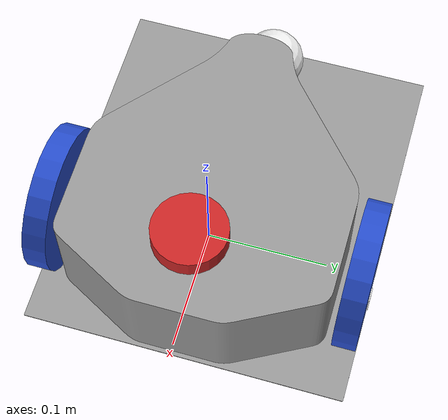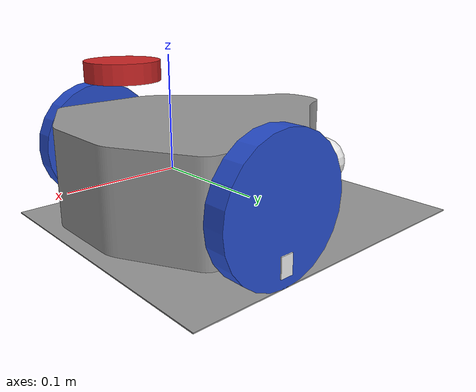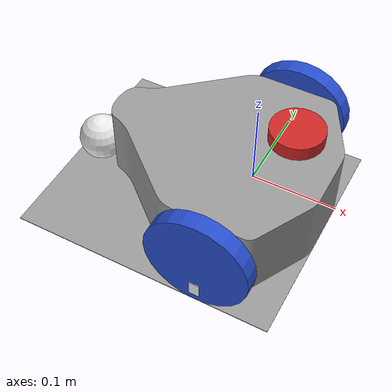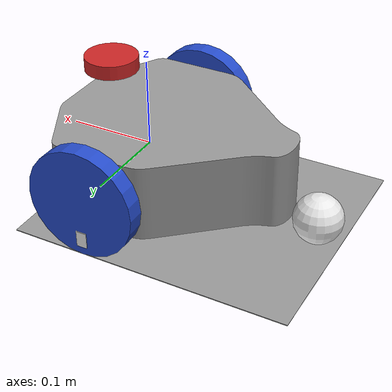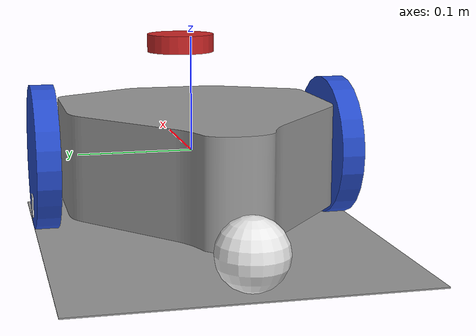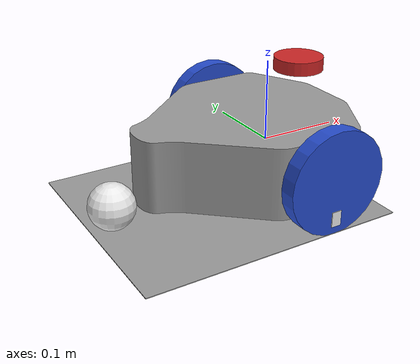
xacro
<?xml version="1.0" ?>
<robot name="stingray" xmlns:xacro="http://ros.org/wiki/xacro">

  <xacro:include filename="stingray_properties.xacro" />
  <xacro:include filename="stingray_base.urdf.xacro" />

  <xacro:property name="imu_offset_x" value="-0.04"/>
  <xacro:property name="imu_offset_z" value="0"/>
  <xacro:property name="imu_visual_size" value="0.01"/>
  <xacro:include filename="../../../description/imu.xacro" />

  <xacro:property name="laser_offset_x" value="0.085"/>
  <xacro:property name="laser_offset_z" value="0.033"/>

  <xacro:include filename="stingray_sensors.urdf.xacro" />

</robot>

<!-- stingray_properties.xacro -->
<robot xmlns:xacro="http://www.ros.org/wiki/xacro">

    <xacro:property name="chassis_length" value="0.266"/>
    <xacro:property name="chassis_width" value="0.228"/>
    <xacro:property name="chassis_height" value="0.081"/>
    <!--chassis_offset is distance from center of chassis
    to chassis origin between the wheels at base_link -->
    <xacro:property name="chassis_offset" value="0.0455"/>
    <!-- front_panel_offset is distance from chassis origin
    at base_link to the front of the chassis -->
    <xacro:property name="front_panel_offset" value="0.090"/>
    <xacro:property name="wheel_radius" value="0.0615"/>
    <xacro:property name="wheel_thickness" value="0.02"/>
    <xacro:property name="wheel_offset" value="0.13"/>
    <xacro:property name="wheel_separation" value="0.26"/>
    <xacro:property name="caster_radius" value="0.028"/>
    <xacro:property name="caster_x_offset" value="-0.207"/>
    <xacro:property name="caster_z_offset" value="-0.035"/>
    <xacro:property name="chassis_mass" value="0.98"/>
    <xacro:property name="wheel_mass" value="0.058"/>
    <xacro:property name="caster_mass" value="0.022"/>
    <xacro:property name="lidar_mass" value="0.207"/>
    <xacro:property name="lidar_radius" value="0.03025"/>
    <xacro:property name="lidar_height" value="0.016"/>
    <xacro:property name="lidar_stand_height" value="0.0424"/>
    <xacro:property name="lidar_offset_X" value="0.045"/>
    <xacro:property name="camera_height" value="0.040"/>
    <xacro:property name="camera_width" value="0.040"/>
    <xacro:property name="camera_depth" value="0.0016"/>
    <xacro:property name="camera_lens_radius" value="0.009"/>
    <xacro:property name="camera_offset_Z" value="0.016"/>
    <xacro:property name="camera_lens_length" value="0.0256"/>
    <xacro:property name="BLANK" value="0.0"/>

</robot>

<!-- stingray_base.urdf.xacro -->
<robot xmlns:xacro="http://ros.org/wiki/xacro">

    <!-- BASE LINK -->
    <link name="base_link">
    <!-- Is located center wheel axles  in mid Y and Z axes of the chassis -->
    <!-- It needs to sit above the world origin by the wheel radius -->
        <origin xyz="0.0 0.0 ${wheel_radius}"/>
    </link>

    <!-- BASE JOINT -->
    <joint name="base_joint" type="fixed">
        <parent link="base_link"/>
        <child link="base_footprint"/>
        <origin xyz="0.0 0.0 -${wheel_radius}" rpy="0.0 0.0 0.0"/>
    </joint>

    <!-- BASE FOOTPRINT -->
    <!-- Represents the 'shadow'of the robot on the floor/ground -->
    <!-- It is the 2d outside dimension of the robot and minimal thickness -->
    <link name="base_footprint">
        <visual name="footprint_visual">
            <origin xyz="-${chassis_offset + caster_radius} 0.0 0.0"/>
            <geometry>
                <box size="${chassis_length + (caster_radius * 2)} ${wheel_separation + wheel_thickness} 0.001"/>
            </geometry>
            <material name="gray"/>
        </visual>
    </link>

    <!-- CHASSIS LINK -->
    <joint name="chassis_joint" type="fixed">
        <origin xyz="0.0 0.0 0.0" rpy="0.0 0.0 0.0"/>
        <parent link="base_link"/>
        <child link="chassis_link"/>
    </joint>
    <link name="chassis_link">
        <visual name="chassis_gz_visual">
            <origin xyz="0.0 0.0 0.0" rpy="0.0 0.0 0.0"/>
            <geometry>
                <!-- box size="${chassis_length} ${chassis_width} ${chassis_height}"/ -->
                <!-- mesh filename="package://stingray/assets/meshes/Stingray.stl" scale="0.001 0.001 0.001"/-->
                <!-- mesh filename="/home/ubuntu/stingray_ws/src/stingray/assets/meshes/Stingray.stl" scale="0.001 0.001 0.001"/-->
                <mesh filename="file://$(find articubot_one)/assets/meshes/Stingray.stl" scale="0.001 0.001 0.001"/>
            </geometry>
            <material name="gray"/>
        </visual>
        <visual name="chassis_rviz_visual">
             <origin xyz="0.0 0.0 0.0" rpy="0.0 0.0 0.0"/>
            <geometry>
                <!-- box size="${chassis_length} ${chassis_width} ${chassis_height}"/ -->
                <mesh filename="file://$(find articubot_one)/assets/meshes/Stingray.stl" scale="0.001 0.001 0.001"/>
                <!-- mesh filename="/home/ubuntu/stingray_ws/src/stingray/assets/meshes/Stingray.stl" scale="0.001 0.001 0.001"/-->
                <!-- mesh filename="file://home/ubuntu/stingray_ws/src/stingray/assets/meshes/Stingray.stl" scale="0.001 0.001 0.001"/-->
            </geometry>
            <material name="gray"/>
        </visual>

        <collision>
            <origin xyz="0.0 0.0 0.0" rpy="0.0 0.0 0.0"/>
            <geometry>
                <!-- mesh filename="package://articubot_one/assets/meshes/Stingray.stl" scale="0.001 0.001 0.001"/ -->
		            <!-- collision doesn't need to be a mesh, a box is sufficient -->
                <box size="${chassis_length} ${chassis_width} ${chassis_height}"/>
            </geometry>
        </collision>
        <xacro:inertial_box mass="${chassis_mass}" x="${chassis_length}" y="${chassis_width}" z="${chassis_height}">
            <origin xyz="0.0 0.0 0.0" rpy="0.0 0.0 0.0"/>
        </xacro:inertial_box>
    </link>

    <!-- WHEEL LINKS -->
    <joint name="wheel_left_joint" type="continuous">
        <parent link="base_link"/>
        <child link="left_wheel_link"/>
        <origin xyz="0.0 0.13 0.0" rpy="-${pi/2} 0.0 0.0"/>
        <axis xyz="0 0 1"/>
    </joint>

    <link name="left_wheel_link">
        <visual name="left_wheel_visual">
            <geometry>
                <cylinder radius="0.062" length="0.02"/>
            </geometry>
            <material name="blue"/>
        </visual>
        <visual name="left_wheel_marker_visual">
            <origin xyz="0 ${wheel_radius*0.7} 0" rpy="0 0 0" />
            <geometry>
                <box size="${wheel_radius*0.2} ${wheel_radius*0.3} ${wheel_thickness*1.1}"/>
            </geometry>
            <material name="white"/>
        </visual>
        <collision>
            <geometry>
                <cylinder radius="0.062" length="0.02"/>
            </geometry>
        </collision>
        <xacro:inertial_cylinder mass="0.141" length="0.02" radius="0.062">
            <origin xyz="0.0 0.0 0.0" rpy="0.0 0.0 0.0"/>
        </xacro:inertial_cylinder>
    </link>

    <joint name="wheel_right_joint" type="continuous">
        <parent link="base_link"/>
        <child link="right_wheel_link"/>
        <origin xyz="0.0 -0.13 0.0" rpy="${pi/2} 0.0 0.0"/>
        <axis xyz="0 0 -1"/>
    </joint>

    <link name="right_wheel_link">
        <visual>
            <geometry>
                <cylinder radius="0.062" length="0.02"/>
            </geometry>
            <material name="blue"/>
        </visual>
        <visual name="right_wheel_marker_visual">
            <origin xyz="0 ${-wheel_radius*0.7} 0" rpy="0 0 0" />
            <geometry>
                <box size="${wheel_radius*0.2} ${wheel_radius*0.3} ${wheel_thickness*1.1}"/>
            </geometry>
            <material name="white"/>
        </visual>
        <collision>
            <geometry>
                <cylinder radius="0.062" length="0.02"/>
            </geometry>
        </collision>
        <xacro:inertial_cylinder mass="0.141" length="0.02" radius="0.062">
            <origin xyz="0.0 0.0 0.0" rpy="0.0 0.0 0.0"/>
        </xacro:inertial_cylinder>
    </link>

    <joint name="caster_wheel_joint" type="fixed">
        <origin xyz="${caster_x_offset} 0.0 ${caster_z_offset}" rpy="0.0 0.0 0.0"/>
        <parent link="base_link"/>
        <child link="caster_wheel_link"/>
        <axis xyz="0.0 0.0 0.0"/>
        <limit lower="0.0" upper="0.0" effort="0.0" velocity="0.0"/>
    </joint>
    <link name="caster_wheel_link">
        <visual name="">
            <origin xyz="0.0 0.0 0.0" rpy="0.0 0.0 0.0"/>
            <geometry>
                <sphere radius=".028"/>
            </geometry>
            <material name="white"/>
        </visual>
        <collision>
            <origin xyz="0.0 0.0 0.0" rpy="0.0 0.0 0.0"/>
            <geometry>
                <sphere radius="0.028"/>
            </geometry>
        </collision>
        <xacro:inertial_sphere mass="0.152" radius="0.058">
            <origin xyz="0.0 0.0 0.0" rpy="0.0 0.0 0.0"/>
        </xacro:inertial_sphere>
    </link>

</robot>

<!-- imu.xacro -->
<robot xmlns:xacro="http://www.ros.org/wiki/xacro" >

    <!-- *********************** IMU SETUP *********************************  -->
    <!-- Each sensor must be attached to a link.                              -->

    <!-- parameters: imu_offset_x
                     imu_offset_z
                     imu_visual_size -->

    <joint name="imu_joint" type="fixed">
        <parent link="chassis_link"/>
        <child link="imu_link"/>
        <!-- we want to place the IMU close to the center of mass, between the wheels -->
        <origin xyz="${imu_offset_x} 0 ${imu_offset_z}" rpy="0 0 0"/>
    </joint>

    <link name="imu_link">
        <visual>
            <geometry>
                <box size="${imu_visual_size} ${imu_visual_size} ${imu_visual_size}"/>
            </geometry>
            <material name="sensor_blue"/>
        </visual>
    </link>

    <!-- gz model -m dragger -s imu_link -->
    <gazebo reference="imu_link">
        <!-- IMU sensor, with "enable_orientation" publishes /imu/data, without - /imu/data_raw
             See https://github.com/CCNYRoboticsLab/imu_tools -->
        <sensor name="imu_link" type="imu">
        <pose>0 0 0 0 0 0</pose>
        <always_on>1</always_on>
        <topic>gz_imu/data</topic>
        <gz_frame_id>imu_link</gz_frame_id>
        <frame_id>imu_link</frame_id>
        <update_rate>250</update_rate>
            <imu>
                <orientation_reference_frame>
                  <localization>ENU</localization>
                </orientation_reference_frame>
                <enable_orientation>1</enable_orientation>
                <angular_velocity>
                    <x>
                        <noise type="gaussian">
                            <mean>0</mean>
                            <stddev>0.009</stddev>
                            <bias_mean>0.00075</bias_mean>
                            <bias_stddev>0.005</bias_stddev>
                            <dynamic_bias_stddev>0.00002</dynamic_bias_stddev>
                            <dynamic_bias_correlation_time>400.0</dynamic_bias_correlation_time>
                            <precision>0.00025</precision>
                        </noise>
                    </x>
                    <y>
                        <noise type="gaussian">
                            <mean>0</mean>
                            <stddev>0.009</stddev>
                            <bias_mean>0.00075</bias_mean>
                            <bias_stddev>0.005</bias_stddev>
                            <dynamic_bias_stddev>0.00002</dynamic_bias_stddev>
                            <dynamic_bias_correlation_time>400.0</dynamic_bias_correlation_time>
                            <precision>0.00025</precision>
                        </noise>
                    </y>
                    <z>
                        <noise type="gaussian">
                            <mean>0</mean>
                            <stddev>0.009</stddev>
                            <bias_mean>0.00075</bias_mean>
                            <bias_stddev>0.005</bias_stddev>
                            <dynamic_bias_stddev>0.00002</dynamic_bias_stddev>
                            <dynamic_bias_correlation_time>400.0</dynamic_bias_correlation_time>
                            <precision>0.00025</precision>
                        </noise>
                    </z>
                </angular_velocity>
                <linear_acceleration>
                    <x>
                        <noise type="gaussian">
                            <mean>0</mean>
                            <stddev>0.021</stddev>
                            <bias_mean>0.05</bias_mean>
                            <bias_stddev>0.0075</bias_stddev>
                            <dynamic_bias_stddev>0.000375</dynamic_bias_stddev>
                            <dynamic_bias_correlation_time>175.0</dynamic_bias_correlation_time>
                            <precision>0.005</precision>
                        </noise>
                    </x>
                    <y>
                        <noise type="gaussian">
                            <mean>0</mean>
                            <stddev>0.021</stddev>
                            <bias_mean>0.05</bias_mean>
                            <bias_stddev>0.0075</bias_stddev>
                            <dynamic_bias_stddev>0.000375</dynamic_bias_stddev>
                            <dynamic_bias_correlation_time>175.0</dynamic_bias_correlation_time>
                            <precision>0.005</precision>
                        </noise>
                    </y>
                    <z>
                        <noise type="gaussian">
                            <mean>0</mean>
                            <stddev>0.021</stddev>
                            <bias_mean>0.05</bias_mean>
                            <bias_stddev>0.0075</bias_stddev>
                            <dynamic_bias_stddev>0.000375</dynamic_bias_stddev>
                            <dynamic_bias_correlation_time>175.0</dynamic_bias_correlation_time>
                            <precision>0.005</precision>
                        </noise>
                    </z>
                </linear_acceleration>
            </imu>
        </sensor>

        <!-- Magnetometer sharing the IMU link, taking magnetic field from "gz::sim::systems::Magnetometer" Gazebo plugin -->
        <sensor name="magnetometer" type="magnetometer">
          <pose>0 0 0 0 0 0</pose>
          <always_on>1</always_on>
          <update_rate>100</update_rate>
          <visualize>true</visualize>
          <topic>gz_magnetometer/data</topic>
          <gz_frame_id>imu_link</gz_frame_id>
          <frame_id>imu_link</frame_id>
          <enable_metrics>true</enable_metrics>
          <magnetometer>
            <x>
              <noise type="gaussian">
                <mean>0.0</mean>
                <stddev>0.001</stddev>
              </noise>
            </x>
            <y>
              <noise type="gaussian">
                <mean>0.0</mean>
                <stddev>0.001</stddev>
              </noise>
            </y>
            <z>
              <noise type="gaussian">
                <mean>0.0</mean>
                <stddev>0.001</stddev>
              </noise>
            </z>
          </magnetometer>
        </sensor>
    </gazebo>

</robot>

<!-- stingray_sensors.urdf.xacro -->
<robot xmlns:xacro="http://www.ros.org/wiki/xacro" >

    <joint name="laser_joint" type="fixed">
        <parent link="chassis_link"/>
        <child link="laser_frame"/>
        <origin xyz="${lidar_offset_X} 0 ${(chassis_height/2) + (lidar_stand_height) + (lidar_height/2)}" rpy="0 0 0"/>
    </joint>

    <link name="laser_frame">
        <visual>
            <geometry>
                <cylinder radius="${lidar_radius}" length="${lidar_height}"/>
            </geometry>
            <material name="red"/>
        </visual>
        <collision>
            <geometry>
                <cylinder radius="${lidar_radius}" length="${lidar_height}"/>
            </geometry>
        </collision>
        <xacro:inertial_cylinder mass="${lidar_mass}" length="${lidar_height}" radius="${lidar_radius}">
            <origin xyz="0 0 0" rpy="0 0 0"/>
        </xacro:inertial_cylinder>
    </link>

    <gazebo reference="laser_frame">
        <material>Gazebo/Red</material>
        <!--sensor name="laser" type="ray" JHP 2024.10.03-->
	    <sensor name="laser_frame" type="gpu_lidar">
            <pose> 0.0 0.0 0.0 0.0 0.0 0.0 </pose>
            <visualize>true</visualize>
            <update_rate>10</update_rate>
            <topic>gz_scan</topic>
            <gz_frame_id>laser_frame</gz_frame_id>
            <frame_id>laser_frame</frame_id>
            <ray>
                <scan>
                    <horizontal>
                        <samples>360</samples>
                        <resolution>1</resolution>
                        <min_angle>-${pi}</min_angle>
                        <max_angle>${pi}</max_angle>
                    </horizontal>
                    <vertical>
                        <samples>1</samples>
                        <resolution>1</resolution>
                        <min_angle>0.0</min_angle>
                        <max_angle>0.0</max_angle>
                    </vertical>
                </scan>
                <range>
                    <min>0.3</min>
                    <max>12</max>
                    <resolution>0.01</resolution>
                </range>
                <noise>
                    <type>gaussian</type>
                    <mean>0</mean>
                    <stddev>0.01</stddev>
                </noise>
            </ray>
        </sensor>
    </gazebo>

</robot>
